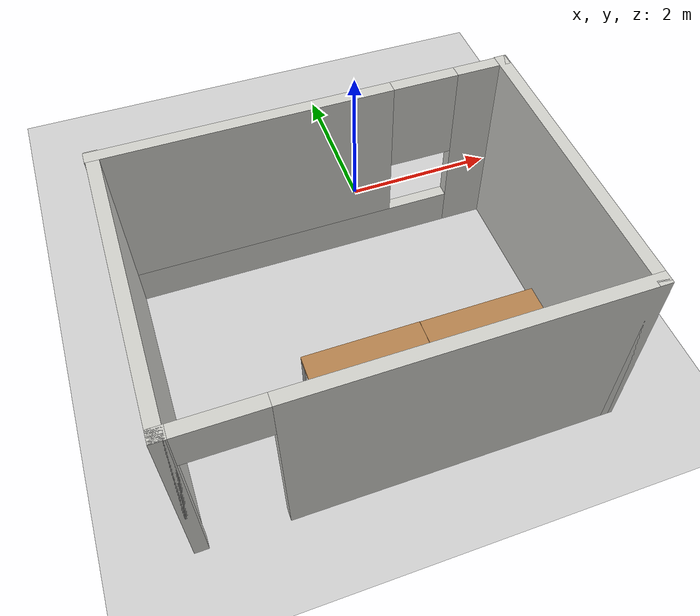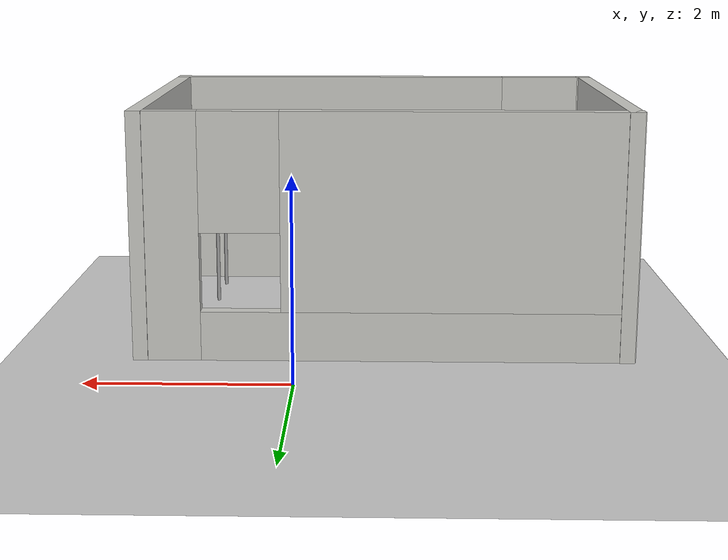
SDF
<sdf version="1.6">
 <world name="default">
  <light name="sun" type="directional">
   <pose>0 0 10 0 -0 0</pose>
   <diffuse>0.8 0.8 0.8 1</diffuse>
   <specular>0.1 0.1 0.1 1</specular>
   <attenuation>
    <range>1000</range>
    <constant>0.9</constant>
    <linear>0.01</linear>
    <quadratic>0.001</quadratic>
   </attenuation>
   <direction>-0.5 0.5 -1</direction>
  </light>
  <model name="ground_plane">
   <static>1</static>
   <link name="link">
    <collision name="collision">
     <geometry><plane><normal>0 0 1</normal><size>100 100</size></plane></geometry>
     <surface><friction><ode><mu>100</mu><mu2>50</mu2></ode></friction></surface>
    </collision>
    <visual name="visual">
     <cast_shadows>0</cast_shadows>
     <geometry><plane><normal>0 0 1</normal><size>100 100</size></plane></geometry>
     <material>
      <script><uri>file://media/materials/scripts/gazebo.material</uri><name>Gazebo/Grey</name></script>
     </material>
    </visual>
   </link>
  </model>
  <gravity>0 0 -9.8</gravity>
  <magnetic_field>6e-06 2.3e-05 -4.2e-05</magnetic_field>
  <atmosphere type="adiabatic"/>
  <physics name="default_physics" default="0" type="ode">
   <max_step_size>0.001</max_step_size>
   <real_time_factor>1</real_time_factor>
   <real_time_update_rate>1000</real_time_update_rate>
  </physics>
  <scene><ambient>0.4 0.4 0.4 1</ambient><background>0.7 0.7 0.7 1</background><shadows>1</shadows></scene>
  <spherical_coordinates>
   <surface_model>EARTH_WGS84</surface_model>
   <latitude_deg>0</latitude_deg>
   <longitude_deg>0</longitude_deg>
   <elevation>0</elevation>
   <heading_deg>0</heading_deg>
  </spherical_coordinates>
  <model name="SurgerySpot">
   <pose>-0.85 -2.565 0 0 -0 0</pose>
   <link name="Wall_3">
    <collision name="Wall_3_Collision">
     <geometry><box><size>3.64 0.15 2.5</size></box></geometry>
     <pose>0 0 1.25 0 -0 0</pose>
    </collision>
    <visual name="Wall_3_Visual">
     <pose>0 0 1.25 0 -0 0</pose>
     <geometry><box><size>3.64 0.15 2.5</size></box></geometry>
     <material>
      <script><uri>file://media/materials/scripts/gazebo.material</uri><name>Gazebo/CeilingTiled</name></script>
      <ambient>1 1 1 1</ambient>
     </material>
    </visual>
    <pose>-2.42 0 0 0 0 -1.5708</pose>
   </link>
   <link name="Wall_4">
    <pose>0.005 -1.745 0 0 -0 0</pose>
    <visual name="Wall_4_Visual_0">
     <pose>-2.4175 0 1.25 0 -0 0</pose>
     <geometry><box><size>0.165 0.15 2.5</size></box></geometry>
     <material>
      <script><uri>file://media/materials/scripts/gazebo.material</uri><name>Gazebo/CeilingTiled</name></script>
      <ambient>1 1 1 1</ambient>
     </material>
    </visual>
    <collision name="Wall_4_Collision_0">
     <geometry><box><size>0.165 0.15 2.5</size></box></geometry>
     <pose>-2.4175 0 1.25 0 -0 0</pose>
    </collision>
    <visual name="Wall_4_Visual_1">
     <pose>0.5325 0 1.25 0 -0 0</pose>
     <geometry><box><size>3.935 0.15 2.5</size></box></geometry>
     <material>
      <script><uri>file://media/materials/scripts/gazebo.material</uri><name>Gazebo/CeilingTiled</name></script>
      <ambient>1 1 1 1</ambient>
     </material>
    </visual>
    <collision name="Wall_4_Collision_1">
     <geometry><box><size>3.935 0.15 2.5</size></box></geometry>
     <pose>0.5325 0 1.25 0 -0 0</pose>
    </collision>
    <visual name="Wall_4_Visual_2">
     <pose>-1.885 0 2.25 0 -0 0</pose>
     <geometry><box><size>0.9 0.15 0.5</size></box></geometry>
     <material>
      <script><uri>file://media/materials/scripts/gazebo.material</uri><name>Gazebo/CeilingTiled</name></script>
      <ambient>1 1 1 1</ambient>
     </material>
    </visual>
    <collision name="Wall_4_Collision_2">
     <geometry><box><size>0.9 0.15 0.5</size></box></geometry>
     <pose>-1.885 0 2.25 0 -0 0</pose>
    </collision>
   </link>
   <link name="Wall_5">
    <collision name="Wall_5_Collision">
     <geometry><box><size>3.64 0.15 2.5</size></box></geometry>
     <pose>0 0 1.25 0 -0 0</pose>
    </collision>
    <visual name="Wall_5_Visual">
     <pose>0 0 1.25 0 -0 0</pose>
     <geometry><box><size>3.64 0.15 2.5</size></box></geometry>
     <material>
      <script><uri>file://media/materials/scripts/gazebo.material</uri><name>Gazebo/CeilingTiled</name></script>
      <ambient>1 1 1 1</ambient>
     </material>
    </visual>
    <pose>2.43 0 0 0 -0 1.5708</pose>
   </link>
   <link name="Wall_6">
    <pose>-0.005 1.735 0 0 -0 3.14159</pose>
    <visual name="Wall_6_Visual_0">
     <pose>-2.1625 0 1.25 0 -0 0</pose>
     <geometry><box><size>0.675 0.15 2.5</size></box></geometry>
     <material>
      <script><uri>file://media/materials/scripts/gazebo.material</uri><name>Gazebo/CeilingTiled</name></script>
      <ambient>0.921569 0.807843 0.615686 1</ambient>
     </material>
    </visual>
    <collision name="Wall_6_Collision_0">
     <geometry><box><size>0.675 0.15 2.5</size></box></geometry>
     <pose>-2.1625 0 1.25 0 -0 0</pose>
    </collision>
    <visual name="Wall_6_Visual_1">
     <pose>0.3375 0 0.25 0 -0 0</pose>
     <geometry><box><size>4.325 0.15 0.5</size></box></geometry>
     <material>
      <script><uri>file://media/materials/scripts/gazebo.material</uri><name>Gazebo/CeilingTiled</name></script>
      <ambient>0.921569 0.807843 0.615686 1</ambient>
     </material>
    </visual>
    <collision name="Wall_6_Collision_1">
     <geometry><box><size>4.325 0.15 0.5</size></box></geometry>
     <pose>0.3375 0 0.25 0 -0 0</pose>
    </collision>
    <visual name="Wall_6_Visual_2">
     <pose>0.7375 0 1.5 0 -0 0</pose>
     <geometry><box><size>3.525 0.15 2</size></box></geometry>
     <material>
      <script><uri>file://media/materials/scripts/gazebo.material</uri><name>Gazebo/CeilingTiled</name></script>
      <ambient>0.921569 0.807843 0.615686 1</ambient>
     </material>
    </visual>
    <collision name="Wall_6_Collision_2">
     <geometry><box><size>3.525 0.15 2</size></box></geometry>
     <pose>0.7375 0 1.5 0 -0 0</pose>
    </collision>
    <visual name="Wall_6_Visual_3">
     <pose>-1.425 0 1.9 0 -0 0</pose>
     <geometry><box><size>0.8 0.15 1.2</size></box></geometry>
     <material>
      <script><uri>file://media/materials/scripts/gazebo.material</uri><name>Gazebo/CeilingTiled</name></script>
      <ambient>0.921569 0.807843 0.615686 1</ambient>
     </material>
    </visual>
    <collision name="Wall_6_Collision_3">
     <geometry><box><size>0.8 0.15 1.2</size></box></geometry>
     <pose>-1.425 0 1.9 0 -0 0</pose>
    </collision>
   </link>
   <static>1</static>
  </model>
  <model name="table_1_0">
   <link name="link">
    <inertial>
     <inertia><ixx>1</ixx><ixy>0</ixy><ixz>0</ixz><iyy>1</iyy><iyz>0</iyz><izz>1</izz></inertia>
     <mass>1</mass>
    </inertial>
    <visual name="back_left_leg">
     <pose>-0.68 0.38 0.5 0 -0 0</pose>
     <geometry><cylinder><radius>0.02</radius><length>1</length></cylinder></geometry>
     <material>
      <script><uri>file://media/materials/scripts/gazebo.material</uri><name>Gazebo/Grey</name></script>
      <ambient>0.3 0.3 0.3 1</ambient>
      <diffuse>0.7 0.7 0.7 1</diffuse>
      <specular>0.01 0.01 0.01 1</specular>
      <emissive>0 0 0 1</emissive>
     </material>
    </visual>
    <visual name="front_left_leg">
     <pose>0.68 0.38 0.5 0 -0 0</pose>
     <geometry><cylinder><radius>0.02</radius><length>1</length></cylinder></geometry>
     <material>
      <script><uri>file://media/materials/scripts/gazebo.material</uri><name>Gazebo/Grey</name></script>
      <ambient>0.3 0.3 0.3 1</ambient>
      <diffuse>0.7 0.7 0.7 1</diffuse>
      <specular>0.01 0.01 0.01 1</specular>
      <emissive>0 0 0 1</emissive>
     </material>
    </visual>
    <visual name="back_right_leg">
     <pose>-0.68 -0.38 0.5 0 -0 0</pose>
     <geometry><cylinder><radius>0.02</radius><length>1</length></cylinder></geometry>
     <material>
      <script><uri>file://media/materials/scripts/gazebo.material</uri><name>Gazebo/Grey</name></script>
      <ambient>0.3 0.3 0.3 1</ambient>
      <diffuse>0.7 0.7 0.7 1</diffuse>
      <specular>0.01 0.01 0.01 1</specular>
      <emissive>0 0 0 1</emissive>
     </material>
    </visual>
    <visual name="visual1">
     <pose>0 0 1 0 -0 0</pose>
     <geometry><box><size>1.4 0.8 0.04</size></box></geometry>
     <material>
      <script><uri>file://media/materials/scripts/gazebo.material</uri><name>Gazebo/Wood</name></script>
      <ambient>1 1 1 1</ambient>
      <diffuse>1 1 1 1</diffuse>
      <specular>0.2 0.2 0.2 1</specular>
      <emissive>0 0 0 1</emissive>
     </material>
    </visual>
    <visual name="front_right_leg">
     <pose>0.68 -0.38 0.5 0 -0 0</pose>
     <geometry><cylinder><radius>0.02</radius><length>1</length></cylinder></geometry>
     <material>
      <script><uri>file://media/materials/scripts/gazebo.material</uri><name>Gazebo/Grey</name></script>
      <ambient>0.3 0.3 0.3 1</ambient>
      <diffuse>0.7 0.7 0.7 1</diffuse>
      <specular>0.01 0.01 0.01 1</specular>
      <emissive>0 0 0 1</emissive>
     </material>
    </visual>
    <collision name="surface">
     <pose>0 0 1 0 -0 0</pose>
     <geometry><box><size>1.5 0.8 0.03</size></box></geometry>
     <surface>
      <friction>
       <ode><mu>0.6</mu><mu2>0.6</mu2><fdir1>0 0 0</fdir1><slip1>0</slip1><slip2>0</slip2></ode>
       <torsional>
        <coefficient>1</coefficient>
        <patch_radius>0</patch_radius>
        <surface_radius>0</surface_radius>
        <use_patch_radius>1</use_patch_radius>
        <ode><slip>0</slip></ode>
       </torsional>
      </friction>
      <bounce><restitution_coefficient>0</restitution_coefficient><threshold>1e+06</threshold></bounce>
      <contact>
       <collide_without_contact>0</collide_without_contact>
       <collide_without_contact_bitmask>1</collide_without_contact_bitmask>
       <collide_bitmask>1</collide_bitmask>
       <ode>
        <soft_cfm>0</soft_cfm>
        <soft_erp>0.2</soft_erp>
        <kp>1e+13</kp>
        <kd>1</kd>
        <max_vel>0.01</max_vel>
        <min_depth>0</min_depth>
       </ode>
       <bullet>
        <split_impulse>1</split_impulse>
        <split_impulse_penetration_threshold>-0.01</split_impulse_penetration_threshold>
        <soft_cfm>0</soft_cfm>
        <soft_erp>0.2</soft_erp>
        <kp>1e+13</kp>
        <kd>1</kd>
       </bullet>
      </contact>
     </surface>
    </collision>
    <collision name="front_right_leg">
     <pose>0.68 -0.38 0.5 0 -0 0</pose>
     <geometry><cylinder><radius>0.02</radius><length>1</length></cylinder></geometry>
     <surface>
      <friction>
       <ode><mu>1</mu><mu2>1</mu2><fdir1>0 0 0</fdir1><slip1>0</slip1><slip2>0</slip2></ode>
       <torsional>
        <coefficient>1</coefficient>
        <patch_radius>0</patch_radius>
        <surface_radius>0</surface_radius>
        <use_patch_radius>1</use_patch_radius>
        <ode><slip>0</slip></ode>
       </torsional>
      </friction>
      <bounce><restitution_coefficient>0</restitution_coefficient><threshold>1e+06</threshold></bounce>
      <contact>
       <collide_without_contact>0</collide_without_contact>
       <collide_without_contact_bitmask>1</collide_without_contact_bitmask>
       <collide_bitmask>1</collide_bitmask>
       <ode>
        <soft_cfm>0</soft_cfm>
        <soft_erp>0.2</soft_erp>
        <kp>1e+13</kp>
        <kd>1</kd>
        <max_vel>0.01</max_vel>
        <min_depth>0</min_depth>
       </ode>
       <bullet>
        <split_impulse>1</split_impulse>
        <split_impulse_penetration_threshold>-0.01</split_impulse_penetration_threshold>
        <soft_cfm>0</soft_cfm>
        <soft_erp>0.2</soft_erp>
        <kp>1e+13</kp>
        <kd>1</kd>
       </bullet>
      </contact>
     </surface>
    </collision>
    <collision name="front_left_leg">
     <pose>0.68 0.38 0.5 0 -0 0</pose>
     <geometry><cylinder><radius>0.02</radius><length>1</length></cylinder></geometry>
     <surface>
      <friction>
       <ode><mu>1</mu><mu2>1</mu2><fdir1>0 0 0</fdir1><slip1>0</slip1><slip2>0</slip2></ode>
       <torsional>
        <coefficient>1</coefficient>
        <patch_radius>0</patch_radius>
        <surface_radius>0</surface_radius>
        <use_patch_radius>1</use_patch_radius>
        <ode><slip>0</slip></ode>
       </torsional>
      </friction>
      <bounce><restitution_coefficient>0</restitution_coefficient><threshold>1e+06</threshold></bounce>
      <contact>
       <collide_without_contact>0</collide_without_contact>
       <collide_without_contact_bitmask>1</collide_without_contact_bitmask>
       <collide_bitmask>1</collide_bitmask>
       <ode>
        <soft_cfm>0</soft_cfm>
        <soft_erp>0.2</soft_erp>
        <kp>1e+13</kp>
        <kd>1</kd>
        <max_vel>0.01</max_vel>
        <min_depth>0</min_depth>
       </ode>
       <bullet>
        <split_impulse>1</split_impulse>
        <split_impulse_penetration_threshold>-0.01</split_impulse_penetration_threshold>
        <soft_cfm>0</soft_cfm>
        <soft_erp>0.2</soft_erp>
        <kp>1e+13</kp>
        <kd>1</kd>
       </bullet>
      </contact>
     </surface>
    </collision>
    <collision name="back_right_leg">
     <pose>-0.68 -0.38 0.5 0 -0 0</pose>
     <geometry><cylinder><radius>0.02</radius><length>1</length></cylinder></geometry>
     <surface>
      <friction>
       <ode><mu>1</mu><mu2>1</mu2><fdir1>0 0 0</fdir1><slip1>0</slip1><slip2>0</slip2></ode>
       <torsional>
        <coefficient>1</coefficient>
        <patch_radius>0</patch_radius>
        <surface_radius>0</surface_radius>
        <use_patch_radius>1</use_patch_radius>
        <ode><slip>0</slip></ode>
       </torsional>
      </friction>
      <bounce><restitution_coefficient>0</restitution_coefficient><threshold>1e+06</threshold></bounce>
      <contact>
       <collide_without_contact>0</collide_without_contact>
       <collide_without_contact_bitmask>1</collide_without_contact_bitmask>
       <collide_bitmask>1</collide_bitmask>
       <ode>
        <soft_cfm>0</soft_cfm>
        <soft_erp>0.2</soft_erp>
        <kp>1e+13</kp>
        <kd>1</kd>
        <max_vel>0.01</max_vel>
        <min_depth>0</min_depth>
       </ode>
       <bullet>
        <split_impulse>1</split_impulse>
        <split_impulse_penetration_threshold>-0.01</split_impulse_penetration_threshold>
        <soft_cfm>0</soft_cfm>
        <soft_erp>0.2</soft_erp>
        <kp>1e+13</kp>
        <kd>1</kd>
       </bullet>
      </contact>
     </surface>
    </collision>
    <collision name="back_left_leg">
     <pose>-0.68 0.38 0.5 0 -0 0</pose>
     <geometry><cylinder><radius>0.02</radius><length>1</length></cylinder></geometry>
     <surface>
      <friction>
       <ode><mu>1</mu><mu2>1</mu2><fdir1>0 0 0</fdir1><slip1>0</slip1><slip2>0</slip2></ode>
       <torsional>
        <coefficient>1</coefficient>
        <patch_radius>0</patch_radius>
        <surface_radius>0</surface_radius>
        <use_patch_radius>1</use_patch_radius>
        <ode><slip>0</slip></ode>
       </torsional>
      </friction>
      <bounce><restitution_coefficient>0</restitution_coefficient><threshold>1e+06</threshold></bounce>
      <contact>
       <collide_without_contact>0</collide_without_contact>
       <collide_without_contact_bitmask>1</collide_without_contact_bitmask>
       <collide_bitmask>1</collide_bitmask>
       <ode>
        <soft_cfm>0</soft_cfm>
        <soft_erp>0.2</soft_erp>
        <kp>1e+13</kp>
        <kd>1</kd>
        <max_vel>0.01</max_vel>
        <min_depth>0</min_depth>
       </ode>
       <bullet>
        <split_impulse>1</split_impulse>
        <split_impulse_penetration_threshold>-0.01</split_impulse_penetration_threshold>
        <soft_cfm>0</soft_cfm>
        <soft_erp>0.2</soft_erp>
        <kp>1e+13</kp>
        <kd>1</kd>
       </bullet>
      </contact>
     </surface>
    </collision>
   </link>
   <static>1</static>
   <pose>0.390449 -3.47058 0 0 -0 0</pose>
  </model>
  <model name="table_2_0">
   <link name="link">
    <inertial>
     <inertia><ixx>1</ixx><ixy>0</ixy><ixz>0</ixz><iyy>1</iyy><iyz>0</iyz><izz>1</izz></inertia>
     <mass>1</mass>
    </inertial>
    <visual name="visual1">
     <pose>0 0 1 0 -0 0</pose>
     <geometry><box><size>1.4 0.8 0.04</size></box></geometry>
     <material>
      <script><uri>file://media/materials/scripts/gazebo.material</uri><name>Gazebo/Wood</name></script>
      <ambient>1 1 1 1</ambient>
      <diffuse>1 1 1 1</diffuse>
      <specular>0.2 0.2 0.2 1</specular>
      <emissive>0 0 0 1</emissive>
     </material>
    </visual>
    <visual name="front_left_leg">
     <pose>0.68 0.38 0.5 0 -0 0</pose>
     <geometry><cylinder><radius>0.02</radius><length>1</length></cylinder></geometry>
     <material>
      <script><uri>file://media/materials/scripts/gazebo.material</uri><name>Gazebo/Grey</name></script>
      <ambient>0.3 0.3 0.3 1</ambient>
      <diffuse>0.7 0.7 0.7 1</diffuse>
      <specular>0.01 0.01 0.01 1</specular>
      <emissive>0 0 0 1</emissive>
     </material>
    </visual>
    <visual name="back_left_leg">
     <pose>-0.68 0.38 0.5 0 -0 0</pose>
     <geometry><cylinder><radius>0.02</radius><length>1</length></cylinder></geometry>
     <material>
      <script><uri>file://media/materials/scripts/gazebo.material</uri><name>Gazebo/Grey</name></script>
      <ambient>0.3 0.3 0.3 1</ambient>
      <diffuse>0.7 0.7 0.7 1</diffuse>
      <specular>0.01 0.01 0.01 1</specular>
      <emissive>0 0 0 1</emissive>
     </material>
    </visual>
    <visual name="back_right_leg">
     <pose>-0.68 -0.38 0.5 0 -0 0</pose>
     <geometry><cylinder><radius>0.02</radius><length>1</length></cylinder></geometry>
     <material>
      <script><uri>file://media/materials/scripts/gazebo.material</uri><name>Gazebo/Grey</name></script>
      <ambient>0.3 0.3 0.3 1</ambient>
      <diffuse>0.7 0.7 0.7 1</diffuse>
      <specular>0.01 0.01 0.01 1</specular>
      <emissive>0 0 0 1</emissive>
     </material>
    </visual>
    <visual name="front_right_leg">
     <pose>0.68 -0.38 0.5 0 -0 0</pose>
     <geometry><cylinder><radius>0.02</radius><length>1</length></cylinder></geometry>
     <material>
      <script><uri>file://media/materials/scripts/gazebo.material</uri><name>Gazebo/Grey</name></script>
      <ambient>0.3 0.3 0.3 1</ambient>
      <diffuse>0.7 0.7 0.7 1</diffuse>
      <specular>0.01 0.01 0.01 1</specular>
      <emissive>0 0 0 1</emissive>
     </material>
    </visual>
    <collision name="back_right_leg">
     <pose>-0.68 -0.38 0.5 0 -0 0</pose>
     <geometry><cylinder><radius>0.02</radius><length>1</length></cylinder></geometry>
     <surface>
      <friction>
       <ode><mu>1</mu><mu2>1</mu2><fdir1>0 0 0</fdir1><slip1>0</slip1><slip2>0</slip2></ode>
       <torsional>
        <coefficient>1</coefficient>
        <patch_radius>0</patch_radius>
        <surface_radius>0</surface_radius>
        <use_patch_radius>1</use_patch_radius>
        <ode><slip>0</slip></ode>
       </torsional>
      </friction>
      <bounce><restitution_coefficient>0</restitution_coefficient><threshold>1e+06</threshold></bounce>
      <contact>
       <collide_without_contact>0</collide_without_contact>
       <collide_without_contact_bitmask>1</collide_without_contact_bitmask>
       <collide_bitmask>1</collide_bitmask>
       <ode>
        <soft_cfm>0</soft_cfm>
        <soft_erp>0.2</soft_erp>
        <kp>1e+13</kp>
        <kd>1</kd>
        <max_vel>0.01</max_vel>
        <min_depth>0</min_depth>
       </ode>
       <bullet>
        <split_impulse>1</split_impulse>
        <split_impulse_penetration_threshold>-0.01</split_impulse_penetration_threshold>
        <soft_cfm>0</soft_cfm>
        <soft_erp>0.2</soft_erp>
        <kp>1e+13</kp>
        <kd>1</kd>
       </bullet>
      </contact>
     </surface>
    </collision>
    <collision name="front_right_leg">
     <pose>0.68 -0.38 0.5 0 -0 0</pose>
     <geometry><cylinder><radius>0.02</radius><length>1</length></cylinder></geometry>
     <surface>
      <friction>
       <ode><mu>1</mu><mu2>1</mu2><fdir1>0 0 0</fdir1><slip1>0</slip1><slip2>0</slip2></ode>
       <torsional>
        <coefficient>1</coefficient>
        <patch_radius>0</patch_radius>
        <surface_radius>0</surface_radius>
        <use_patch_radius>1</use_patch_radius>
        <ode><slip>0</slip></ode>
       </torsional>
      </friction>
      <bounce><restitution_coefficient>0</restitution_coefficient><threshold>1e+06</threshold></bounce>
      <contact>
       <collide_without_contact>0</collide_without_contact>
       <collide_without_contact_bitmask>1</collide_without_contact_bitmask>
       <collide_bitmask>1</collide_bitmask>
       <ode>
        <soft_cfm>0</soft_cfm>
        <soft_erp>0.2</soft_erp>
        <kp>1e+13</kp>
        <kd>1</kd>
        <max_vel>0.01</max_vel>
        <min_depth>0</min_depth>
       </ode>
       <bullet>
        <split_impulse>1</split_impulse>
        <split_impulse_penetration_threshold>-0.01</split_impulse_penetration_threshold>
        <soft_cfm>0</soft_cfm>
        <soft_erp>0.2</soft_erp>
        <kp>1e+13</kp>
        <kd>1</kd>
       </bullet>
      </contact>
     </surface>
    </collision>
    <collision name="back_left_leg">
     <pose>-0.68 0.38 0.5 0 -0 0</pose>
     <geometry><cylinder><radius>0.02</radius><length>1</length></cylinder></geometry>
     <surface>
      <friction>
       <ode><mu>1</mu><mu2>1</mu2><fdir1>0 0 0</fdir1><slip1>0</slip1><slip2>0</slip2></ode>
       <torsional>
        <coefficient>1</coefficient>
        <patch_radius>0</patch_radius>
        <surface_radius>0</surface_radius>
        <use_patch_radius>1</use_patch_radius>
        <ode><slip>0</slip></ode>
       </torsional>
      </friction>
      <bounce><restitution_coefficient>0</restitution_coefficient><threshold>1e+06</threshold></bounce>
      <contact>
       <collide_without_contact>0</collide_without_contact>
       <collide_without_contact_bitmask>1</collide_without_contact_bitmask>
       <collide_bitmask>1</collide_bitmask>
       <ode>
        <soft_cfm>0</soft_cfm>
        <soft_erp>0.2</soft_erp>
        <kp>1e+13</kp>
        <kd>1</kd>
        <max_vel>0.01</max_vel>
        <min_depth>0</min_depth>
       </ode>
       <bullet>
        <split_impulse>1</split_impulse>
        <split_impulse_penetration_threshold>-0.01</split_impulse_penetration_threshold>
        <soft_cfm>0</soft_cfm>
        <soft_erp>0.2</soft_erp>
        <kp>1e+13</kp>
        <kd>1</kd>
       </bullet>
      </contact>
     </surface>
    </collision>
    <collision name="surface">
     <pose>0 0 1 0 -0 0</pose>
     <geometry><box><size>1.5 0.8 0.03</size></box></geometry>
     <surface>
      <friction>
       <ode><mu>0.6</mu><mu2>0.6</mu2><fdir1>0 0 0</fdir1><slip1>0</slip1><slip2>0</slip2></ode>
       <torsional>
        <coefficient>1</coefficient>
        <patch_radius>0</patch_radius>
        <surface_radius>0</surface_radius>
        <use_patch_radius>1</use_patch_radius>
        <ode><slip>0</slip></ode>
       </torsional>
      </friction>
      <bounce><restitution_coefficient>0</restitution_coefficient><threshold>1e+06</threshold></bounce>
      <contact>
       <collide_without_contact>0</collide_without_contact>
       <collide_without_contact_bitmask>1</collide_without_contact_bitmask>
       <collide_bitmask>1</collide_bitmask>
       <ode>
        <soft_cfm>0</soft_cfm>
        <soft_erp>0.2</soft_erp>
        <kp>1e+13</kp>
        <kd>1</kd>
        <max_vel>0.01</max_vel>
        <min_depth>0</min_depth>
       </ode>
       <bullet>
        <split_impulse>1</split_impulse>
        <split_impulse_penetration_threshold>-0.01</split_impulse_penetration_threshold>
        <soft_cfm>0</soft_cfm>
        <soft_erp>0.2</soft_erp>
        <kp>1e+13</kp>
        <kd>1</kd>
       </bullet>
      </contact>
     </surface>
    </collision>
    <collision name="front_left_leg">
     <pose>0.68 0.38 0.5 0 -0 0</pose>
     <geometry><cylinder><radius>0.02</radius><length>1</length></cylinder></geometry>
     <surface>
      <friction>
       <ode><mu>1</mu><mu2>1</mu2><fdir1>0 0 0</fdir1><slip1>0</slip1><slip2>0</slip2></ode>
       <torsional>
        <coefficient>1</coefficient>
        <patch_radius>0</patch_radius>
        <surface_radius>0</surface_radius>
        <use_patch_radius>1</use_patch_radius>
        <ode><slip>0</slip></ode>
       </torsional>
      </friction>
      <bounce><restitution_coefficient>0</restitution_coefficient><threshold>1e+06</threshold></bounce>
      <contact>
       <collide_without_contact>0</collide_without_contact>
       <collide_without_contact_bitmask>1</collide_without_contact_bitmask>
       <collide_bitmask>1</collide_bitmask>
       <ode>
        <soft_cfm>0</soft_cfm>
        <soft_erp>0.2</soft_erp>
        <kp>1e+13</kp>
        <kd>1</kd>
        <max_vel>0.01</max_vel>
        <min_depth>0</min_depth>
       </ode>
       <bullet>
        <split_impulse>1</split_impulse>
        <split_impulse_penetration_threshold>-0.01</split_impulse_penetration_threshold>
        <soft_cfm>0</soft_cfm>
        <soft_erp>0.2</soft_erp>
        <kp>1e+13</kp>
        <kd>1</kd>
       </bullet>
      </contact>
     </surface>
    </collision>
   </link>
   <static>1</static>
   <pose>-1.01096 -3.46848 0 0 -0 0</pose>
  </model>
 </world>
</sdf>
